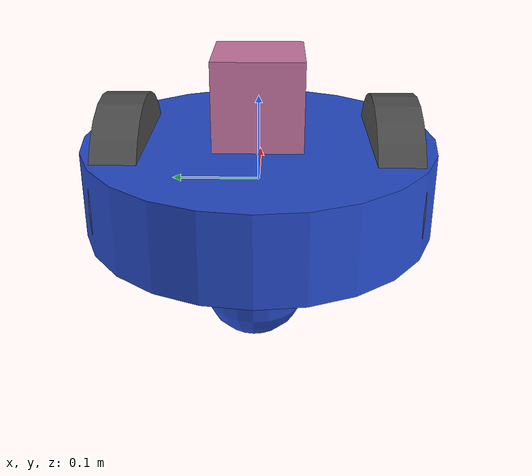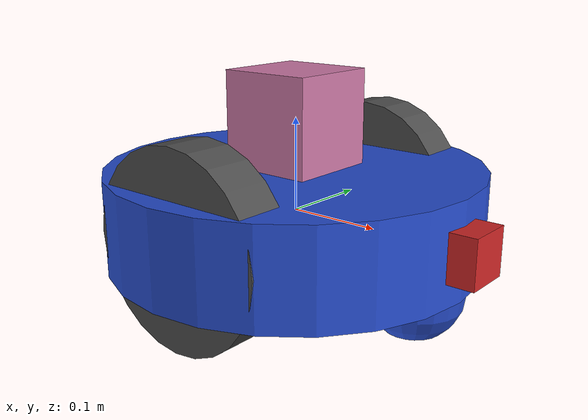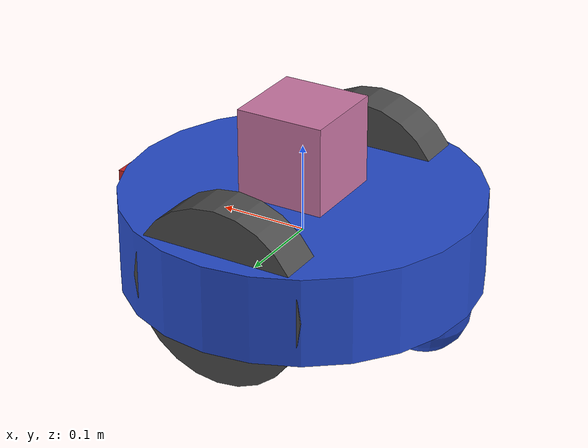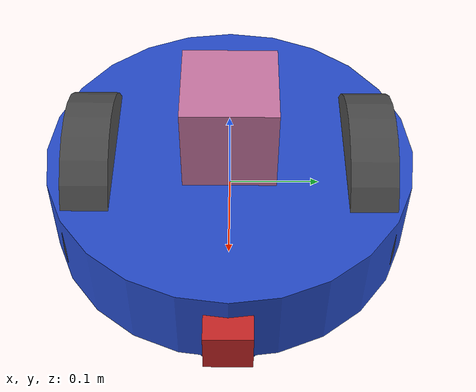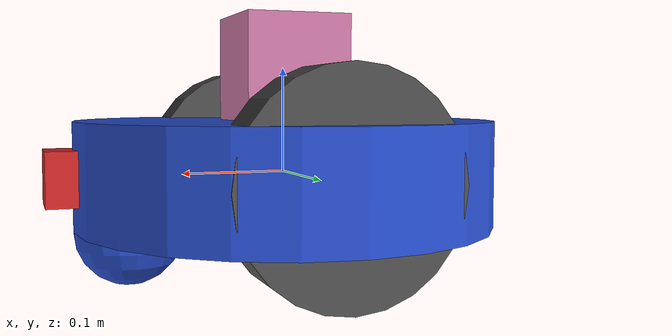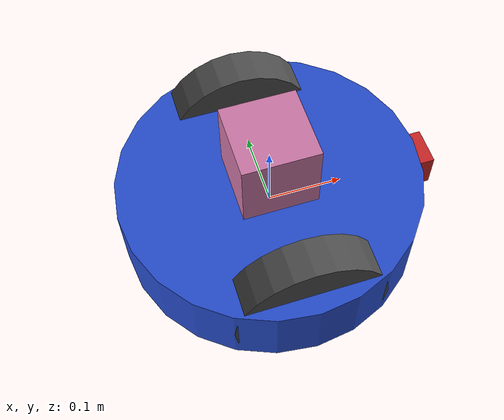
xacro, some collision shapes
<?xml version='1.0'?>

<robot name="my_robot" xmlns:xacro="http://www.ros.org/wiki/xacro">

    <xacro:include filename="$(find my_robot)/urdf/my_robot.gazebo"/>

    <link name="robot_footprint"></link>

    <joint name="robot_footprint_joint" type="fixed">
        <origin xyz="0 0 0" rpy="0 0 0"/>
        <parent link="robot_footprint"/>
        <child link="chassis"/>
    </joint>

    <link name='chassis'>
        <pose>0 0 0.1 0 0 0</pose>

        <inertial>
            <mass value="15.0"/>
            <origin xyz="0.0 0 0" rpy=" 0 0 0"/>
            <inertia
                    ixx="0.1" ixy="0" ixz="0"
                    iyy="0.1" iyz="0"
                    izz="0.1"
            />
        </inertial>

        <collision name='collision'>
            <origin xyz="0 0 0" rpy=" 0 0 0"/>
            <geometry>
                <cylinder length=".1" radius=".2"/>
            </geometry>
        </collision>

        <visual name='chassis_visual'>
            <origin xyz="0 0 0" rpy=" 0 0 0"/>
            <geometry>
                <cylinder length=".1" radius=".2"/>
            </geometry>
        </visual>

        <collision name='back_caster_collision'>
            <origin xyz="-0.15 0 -0.05" rpy=" 0 0 0"/>
            <geometry>
                <sphere radius="0.0499"/>
            </geometry>
        </collision>

        <visual name='back_caster_visual'>
            <origin xyz="-0.15 0 -0.05" rpy=" 0 0 0"/>
            <geometry>
                <sphere radius="0.05"/>
            </geometry>
        </visual>

        <collision name='front_caster_collision'>
            <origin xyz="0.15 0 -0.05" rpy=" 0 0 0"/>
            <geometry>
                <sphere radius="0.0499"/>
            </geometry>
        </collision>

        <visual name='front_caster_visual'>
            <origin xyz="0.15 0 -0.05" rpy=" 0 0 0"/>
            <geometry>
                <sphere radius="0.05"/>
            </geometry>
        </visual>

    </link>

    <link name='left_wheel'>
        <inertial>
            <mass value="5.0"/>
            <origin xyz="0 0 0" rpy=" 0 1.5707 1.5707"/>
            <inertia
                    ixx="0.1" ixy="0" ixz="0"
                    iyy="0.1" iyz="0"
                    izz="0.1"
            />
        </inertial>

        <collision name='collision'>
            <origin xyz="0 0 0" rpy=" 0 1.5707 1.5707"/>
            <geometry>
                <cylinder radius=".1" length=".05"/>
            </geometry>
        </collision>

        <visual name='visual'>
            <origin xyz="0 0 0" rpy=" 0 1.5707 1.5707"/>
            <geometry>
                <cylinder radius=".1" length=".05"/>
            </geometry>
        </visual>
    </link>

    <link name='right_wheel'>
        <inertial>
            <mass value="5.0"/>
            <origin xyz="0 0 0" rpy=" 0 1.5707 1.5707"/>
            <inertia
                    ixx="0.1" ixy="0" ixz="0"
                    iyy="0.1" iyz="0"
                    izz="0.1"
            />
        </inertial>

        <collision name='collision'>
            <origin xyz="0 0 0" rpy=" 0 1.5707 1.5707"/>
            <geometry>
                <cylinder radius=".1" length=".05"/>
            </geometry>
        </collision>

        <visual name='visual'>
            <origin xyz="0 0 0" rpy=" 0 1.5707 1.5707"/>
            <geometry>
                <cylinder radius=".1" length=".05"/>
            </geometry>
        </visual>
    </link>

    <link name='camera'>
        <inertial>
            <mass value="0.1"/>
            <origin xyz="0 0 0" rpy=" 0 0 0"/>
            <inertia
                    ixx="1e-6" ixy="0" ixz="0" iyy="1e-6" iyz="0" izz="1e-6"
            />
            <box_inertia
                    m="0.1" x="0.05" y="0.05" z="0.05"
            />
        </inertial>

        <collision name='collision'>
            <origin xyz="0 0 0" rpy=" 0 0 0"/>
            <geometry>
                <box size=".05 .05 .05"/>
            </geometry>
        </collision>

        <visual name='camera'>
            <origin xyz="0 0 0" rpy=" 0 0 0"/>
            <geometry>
                <box size=".05 .05 .05"/>
            </geometry>
        </visual>
    </link>

    <link name="camera_link_optical">
    </link>

    <link name='hokuyo'>
        <inertial>
            <mass value="1e-5"/>
            <origin xyz="0 0 0" rpy=" 0 0 0"/>
            <inertia
                    ixx="1e-6" ixy="0" ixz="0" iyy="1e-6" iyz="0" izz="1e-6"
            />
        </inertial>

        <collision name='collision'>
            <origin xyz="0 0 0" rpy=" 0 0 0"/>
            <geometry>
                <box size=".1 .1 .1"/>
            </geometry>
        </collision>

        <visual name='visual'>
            <origin xyz="0 0 0" rpy=" 0 0 0"/>
            <geometry>
                <mesh filename="package://my_robot/meshes/hokuyo.dae"/>
            </geometry>
        </visual>
    </link>

    <joint type="continuous" name="left_wheel_hinge">
        <origin xyz="0 0.15 0" rpy="0 0 0"/>
        <child link="left_wheel"/>
        <parent link="chassis"/>
        <axis xyz="0 1 0" rpy="0 0 0"/>
        <limit effort="10000" velocity="1000"/>
        <dynamics damping="1.0" friction="1.0"/>
    </joint>

    <joint type="continuous" name="right_wheel_hinge">
        <origin xyz="0 -0.15 0" rpy="0 0 0"/>
        <child link="right_wheel"/>
        <parent link="chassis"/>
        <axis xyz="0 1 0" rpy="0 0 0"/>
        <limit effort="10000" velocity="1000"/>
        <dynamics damping="1.0" friction="1.0"/>
    </joint>

    <joint type="fixed" name="camera_joint">
        <origin xyz="0.2 0 0" rpy="0 0 0"/>
        <child link="camera"/>
        <parent link="chassis"/>
        <axis xyz="0 1 0" rpy="0 0 0"/>
        <limit effort="10000" velocity="1000"/>
        <dynamics damping="1.0" friction="1.0"/>
    </joint>

    <joint type="fixed" name="hokuyo_joint">
        <origin xyz="0 0 0.1" rpy="0 0 0"/>
        <child link="hokuyo"/>
        <parent link="chassis"/>
        <axis xyz="0 1 0" rpy="0 0 0"/>
        <limit effort="10000" velocity="1000"/>
        <dynamics damping="1.0" friction="1.0"/>
    </joint>

    <joint name="camera_optical_joint" type="fixed">
        <origin xyz="0 0 0" rpy="-1.5707 0 -1.5707"/>
        <parent link="camera"/>
        <child link="camera_link_optical"/>
    </joint>

    <gazebo reference="left_wheel">
        <material>Gazebo/DarkGray</material>
    </gazebo>

    <gazebo reference="right_wheel">
        <material>Gazebo/DarkGray</material>
    </gazebo>

    <gazebo reference="chassis">
        <material>Gazebo/Blue</material>
    </gazebo>

    <gazebo reference="camera">
        <material>Gazebo/RedBright</material>
    </gazebo>

</robot>
